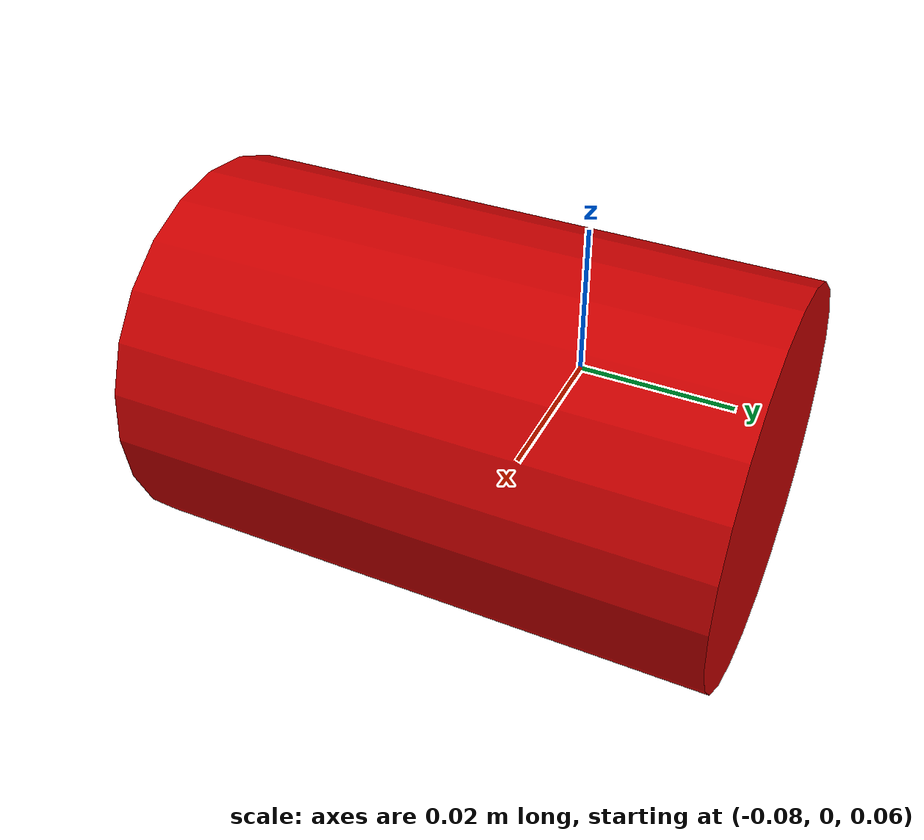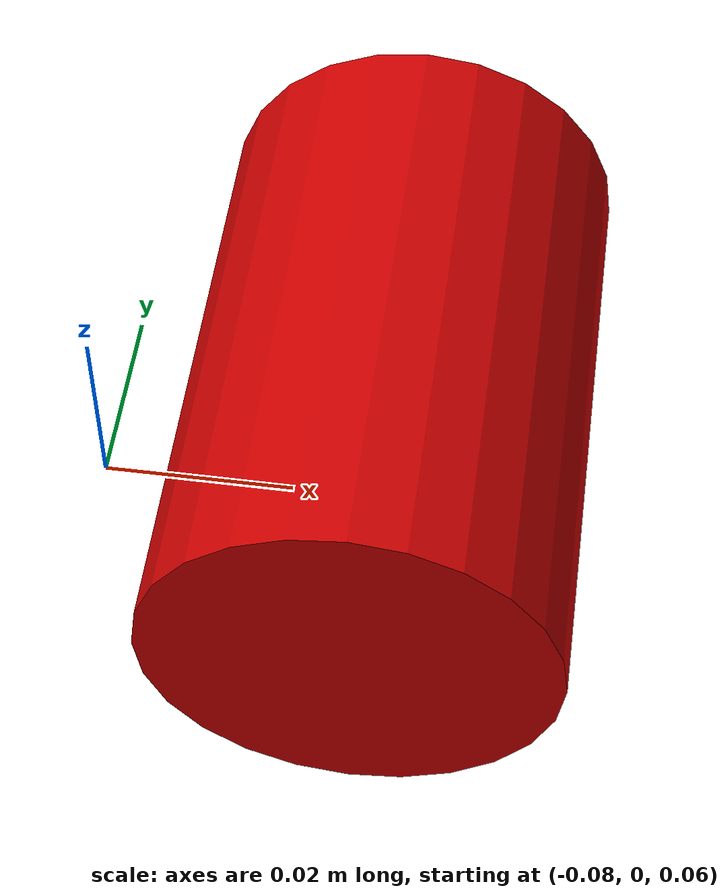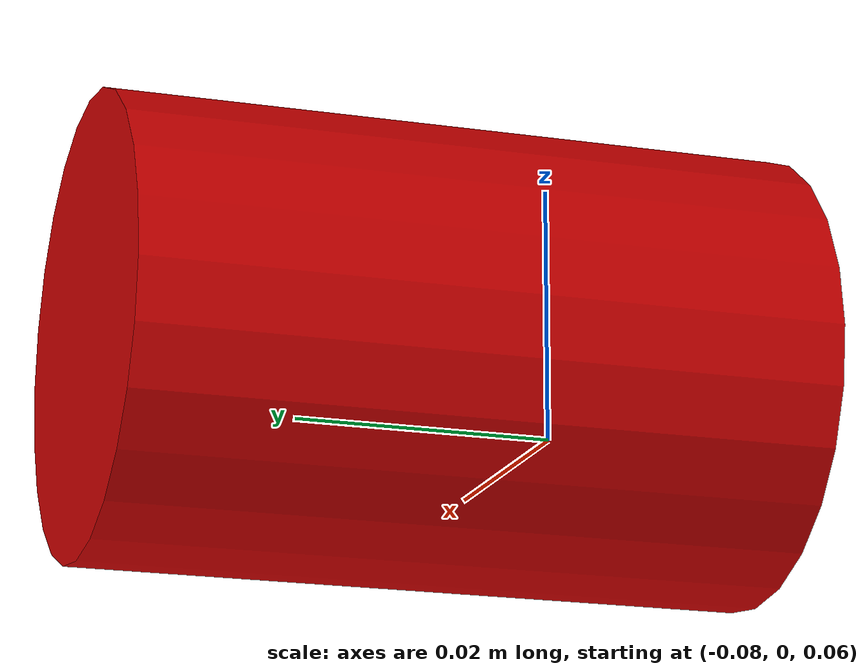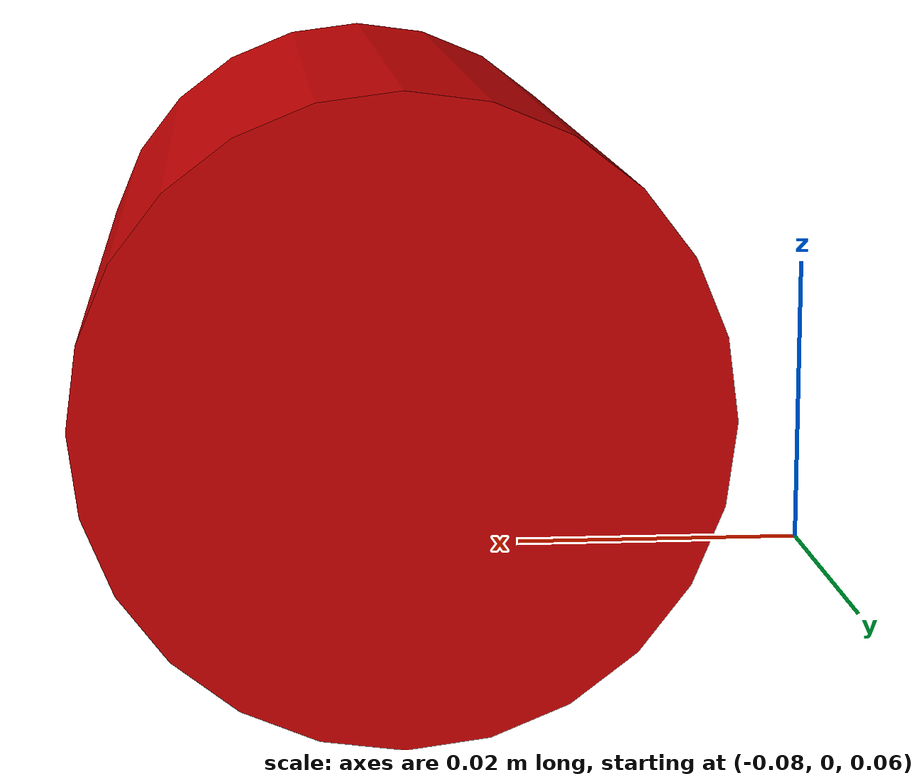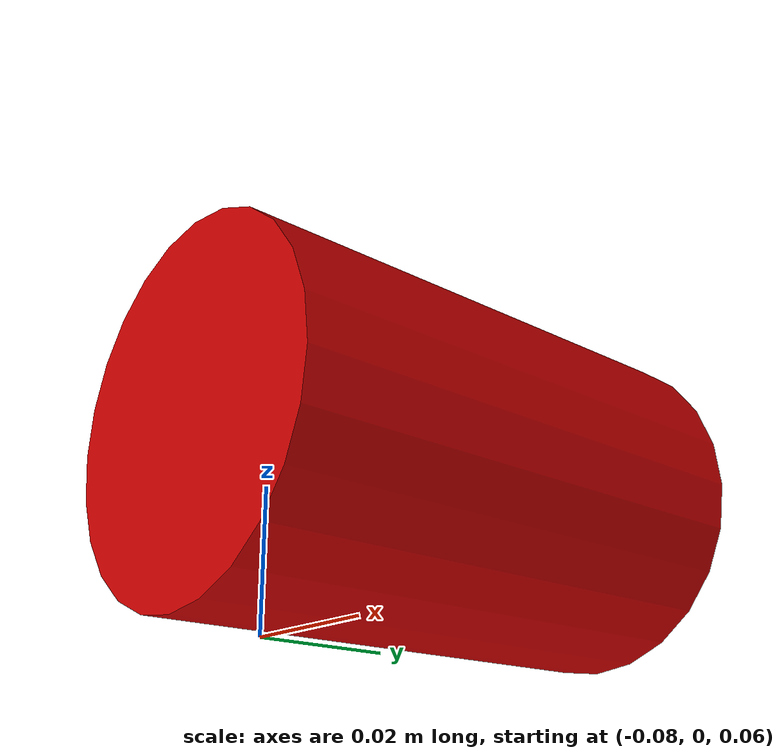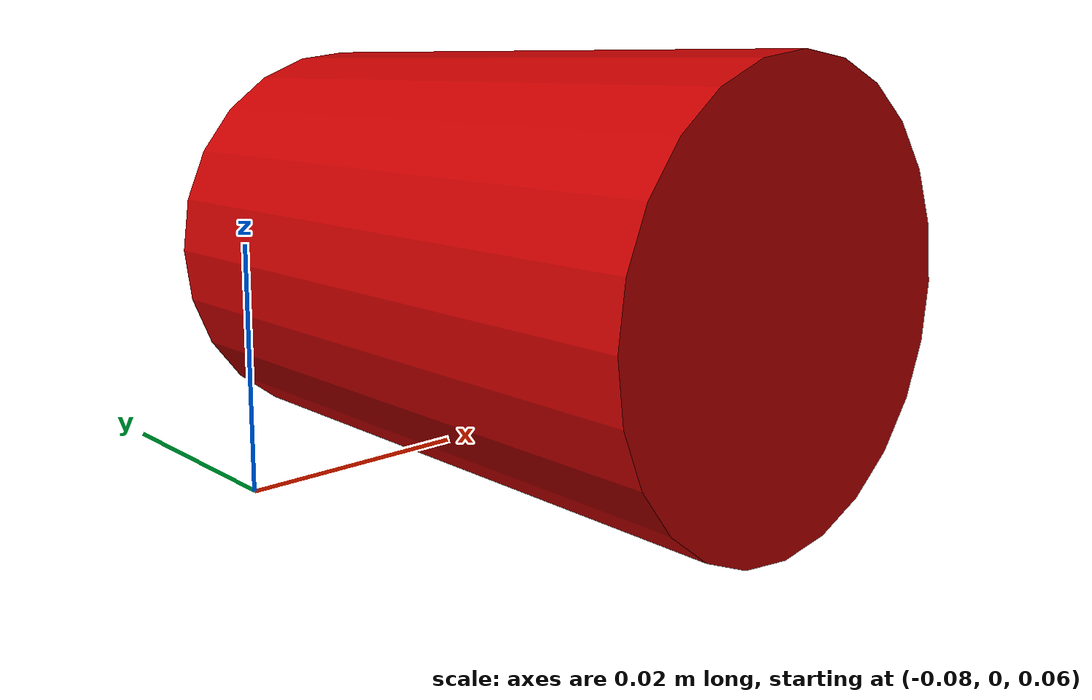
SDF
<?xml version="1.0"?>
<sdf version="1.7" xmlns:drake="drake.mit.edu">
  <model name="obstacles">
    <link name="obstacle">
      <pose>-0.05 0 0.075  0 0 0</pose>
      <inertial>
        <pose>0.0 0.0 0.0 0 0 0</pose>
        <mass>1</mass>
        <inertia>
          <ixx> 1.5625e-7 </ixx>
          <ixy> 0.0 </ixy>
          <ixz> 0.0 </ixz>
          <iyy> 9.3828125e-5 </iyy>
          <iyz> 0.0 </iyz>
          <izz> 9.3828125e-5 </izz>
        </inertia>
      </inertial>
      <visual name="obstacle_visual">
        <pose>0 0 0 1.570796 0 0</pose>
        <geometry>
          <cylinder>
            <radius>0.02</radius>
            <length>0.06</length>
          </cylinder>
        </geometry>
    	  <material>
	        <diffuse>0.8 0.0 0.0</diffuse>
        </material>
      </visual>
      <collision name="obstacle_collision">
        <pose>0 0 0 1.570796 0 0</pose>
        <geometry>
          <cylinder>
            <radius>0.02</radius>
            <length>0.06</length>
          </cylinder>
        </geometry>
        <drake:proximity_properties>
          <drake:compliant_hydroelastic/>
          <drake:hydroelastic_modulus> 1.0e8 </drake:hydroelastic_modulus>
          <drake:hunt_crossley_dissipation> 100 </drake:hunt_crossley_dissipation>
	        <drake:mesh_resolution_hint> 0.01 </drake:mesh_resolution_hint>
          <drake:mu_dynamic> 1.5 </drake:mu_dynamic>
          <drake:mu_static> 1.5 </drake:mu_static>
        </drake:proximity_properties>
      </collision>
    </link>
    <joint name="obstacle_weld" type="fixed">
      <parent>world</parent>
      <child>obstacle</child>
      <!-- Pose X_CJ of the joint frame J in frame C of the child link. -->
      <pose>0 0 0 0 0 0</pose>
    </joint>
  </model>
</sdf>
